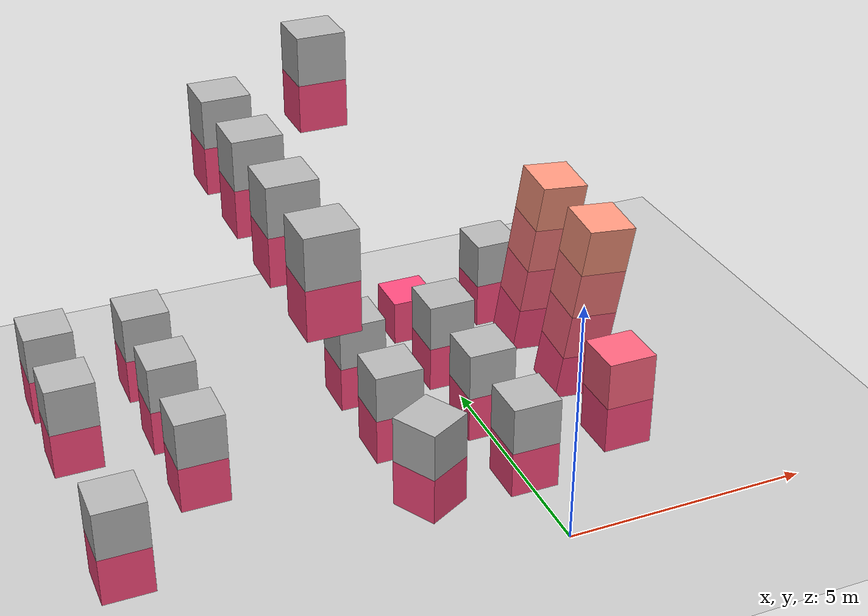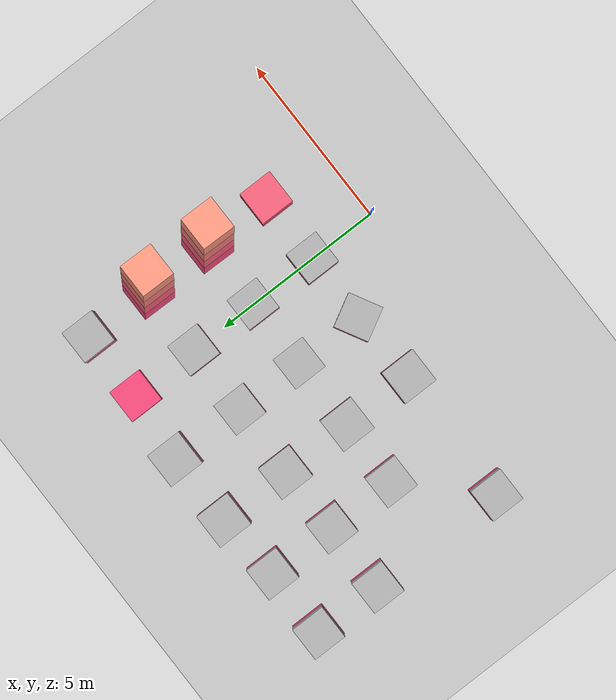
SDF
<sdf version="1.7">
 <world name="default">
  <include><uri>model://ground_plane</uri></include>
  <include><uri>model://sun</uri></include>
  <model name="model_test_clear_joint_forces">
   <pose>-8 2 0.5 0 0 0</pose>
   <static>false</static>
   <link name="link_1">
    <inertial>
     <inertia><ixx>0.166</ixx><ixy>0</ixy><ixz>0</ixz><iyy>0.166</iyy><iyz>0</iyz><izz>0.166</izz></inertia>
     <mass>1.0</mass>
    </inertial>
    <collision name="collision"><geometry><box><size>1 1 1</size></box></geometry></collision>
    <visual name="visual">
     <geometry><box><size>1 1 1</size></box></geometry>
     <material><diffuse>1.0 0.3 0.5 1.0</diffuse><specular>.1 .1 .1 1.0</specular></material>
    </visual>
   </link>
   <link name="link_2">
    <pose>0 0 1 0 0 0</pose>
    <inertial>
     <inertia><ixx>0.166</ixx><ixy>0</ixy><ixz>0</ixz><iyy>0.166</iyy><iyz>0</iyz><izz>0.166</izz></inertia>
     <mass>1.0</mass>
    </inertial>
    <collision name="collision"><geometry><box><size>1 1 1</size></box></geometry></collision>
    <visual name="visual"><geometry><box><size>1 1 1</size></box></geometry></visual>
   </link>
   <joint name="joint" type="revolute">
    <parent>link_1</parent>
    <child>link_2</child>
    <axis><xyz>0 0 1</xyz></axis>
   </joint>
  </model>
  <model name="model_test_delete_model">
   <pose>-8 6 0.5 0 0 0</pose>
   <static>false</static>
   <link name="link_1">
    <inertial>
     <inertia><ixx>0.166</ixx><ixy>0</ixy><ixz>0</ixz><iyy>0.166</iyy><iyz>0</iyz><izz>0.166</izz></inertia>
     <mass>1.0</mass>
    </inertial>
    <collision name="collision"><geometry><box><size>1 1 1</size></box></geometry></collision>
    <visual name="visual">
     <geometry><box><size>1 1 1</size></box></geometry>
     <material><diffuse>1.0 0.3 0.5 1.0</diffuse><specular>.1 .1 .1 1.0</specular></material>
    </visual>
   </link>
   <link name="link_2">
    <pose>0 0 1 0 0 0</pose>
    <inertial>
     <inertia><ixx>0.166</ixx><ixy>0</ixy><ixz>0</ixz><iyy>0.166</iyy><iyz>0</iyz><izz>0.166</izz></inertia>
     <mass>1.0</mass>
    </inertial>
    <collision name="collision"><geometry><box><size>1 1 1</size></box></geometry></collision>
    <visual name="visual"><geometry><box><size>1 1 1</size></box></geometry></visual>
   </link>
   <joint name="joint" type="revolute">
    <parent>link_1</parent>
    <child>link_2</child>
    <axis><xyz>0 0 1</xyz></axis>
   </joint>
  </model>
  <model name="model_test_get_joint_properties">
   <pose>-8 8 0.5 0 0 0</pose>
   <static>false</static>
   <link name="link_1">
    <inertial>
     <inertia><ixx>0.166</ixx><ixy>0</ixy><ixz>0</ixz><iyy>0.166</iyy><iyz>0</iyz><izz>0.166</izz></inertia>
     <mass>1.0</mass>
    </inertial>
    <collision name="collision"><geometry><box><size>1 1 1</size></box></geometry></collision>
    <visual name="visual">
     <geometry><box><size>1 1 1</size></box></geometry>
     <material><diffuse>1.0 0.3 0.5 1.0</diffuse><specular>.1 .1 .1 1.0</specular></material>
    </visual>
   </link>
   <link name="link_2">
    <pose>0 0 1 0 0 0</pose>
    <inertial>
     <inertia><ixx>0.166</ixx><ixy>0</ixy><ixz>0</ixz><iyy>0.166</iyy><iyz>0</iyz><izz>0.166</izz></inertia>
     <mass>1.0</mass>
    </inertial>
    <collision name="collision"><geometry><box><size>1 1 1</size></box></geometry></collision>
    <visual name="visual"><geometry><box><size>1 1 1</size></box></geometry></visual>
   </link>
   <joint name="joint" type="revolute">
    <parent>link_1</parent>
    <child>link_2</child>
    <axis><xyz>0 0 1</xyz></axis>
   </joint>
  </model>
  <model name="model_test_get_link_properties">
   <pose>-6 4 0.5 0 0 0</pose>
   <static>false</static>
   <link name="link_1">
    <inertial>
     <inertia><ixx>0.166</ixx><ixy>0</ixy><ixz>0</ixz><iyy>0.166</iyy><iyz>0</iyz><izz>0.166</izz></inertia>
     <mass>1.0</mass>
    </inertial>
    <collision name="collision"><geometry><box><size>1 1 1</size></box></geometry></collision>
    <visual name="visual">
     <geometry><box><size>1 1 1</size></box></geometry>
     <material><diffuse>1.0 0.3 0.5 1.0</diffuse><specular>.1 .1 .1 1.0</specular></material>
    </visual>
   </link>
   <link name="link_2">
    <pose>0 0 1 0 0 0</pose>
    <inertial>
     <inertia><ixx>0.11</ixx><ixy>0.03</ixy><ixz>0.8</ixz><iyy>0.241</iyy><iyz>0.001</iyz><izz>0.23</izz></inertia>
     <mass>1.0</mass>
    </inertial>
    <collision name="collision"><geometry><box><size>1 1 1</size></box></geometry></collision>
    <visual name="visual"><geometry><box><size>1 1 1</size></box></geometry></visual>
   </link>
   <joint name="joint" type="revolute">
    <parent>link_1</parent>
    <child>link_2</child>
    <axis><xyz>0 0 1</xyz></axis>
   </joint>
  </model>
  <model name="model_test_get_link_gravity_mode">
   <pose>-6 6 0.5 0 0 0</pose>
   <static>false</static>
   <link name="link_1">
    <inertial>
     <inertia><ixx>0.166</ixx><ixy>0</ixy><ixz>0</ixz><iyy>0.166</iyy><iyz>0</iyz><izz>0.166</izz></inertia>
     <mass>1.0</mass>
    </inertial>
    <collision name="collision"><geometry><box><size>1 1 1</size></box></geometry></collision>
    <visual name="visual">
     <geometry><box><size>1 1 1</size></box></geometry>
     <material><diffuse>1.0 0.3 0.5 1.0</diffuse><specular>.1 .1 .1 1.0</specular></material>
    </visual>
   </link>
   <link name="link_2">
    <pose>0 0 1 0 0 0</pose>
    <gravity>false</gravity>
    <inertial>
     <inertia><ixx>0.166</ixx><ixy>0</ixy><ixz>0</ixz><iyy>0.166</iyy><iyz>0</iyz><izz>0.166</izz></inertia>
     <mass>1.0</mass>
    </inertial>
    <collision name="collision"><geometry><box><size>1 1 1</size></box></geometry></collision>
    <visual name="visual"><geometry><box><size>1 1 1</size></box></geometry></visual>
   </link>
   <joint name="joint" type="revolute">
    <parent>link_1</parent>
    <child>link_2</child>
    <axis><xyz>0 0 1</xyz></axis>
   </joint>
  </model>
  <model name="model_test_get_link_mass">
   <pose>-6 8 0.5 0 0 0</pose>
   <static>false</static>
   <link name="link_1">
    <inertial>
     <inertia><ixx>0.166</ixx><ixy>0</ixy><ixz>0</ixz><iyy>0.166</iyy><iyz>0</iyz><izz>0.166</izz></inertia>
     <mass>1.0</mass>
    </inertial>
    <collision name="collision"><geometry><box><size>1 1 1</size></box></geometry></collision>
    <visual name="visual">
     <geometry><box><size>1 1 1</size></box></geometry>
     <material><diffuse>1.0 0.3 0.5 1.0</diffuse><specular>.1 .1 .1 1.0</specular></material>
    </visual>
   </link>
   <link name="link_2">
    <pose>0 0 1 0 0 0</pose>
    <inertial>
     <inertia><ixx>0.333</ixx><ixy>0</ixy><ixz>0</ixz><iyy>0.333</iyy><iyz>0</iyz><izz>0.333</izz></inertia>
     <mass>2.0</mass>
    </inertial>
    <collision name="collision"><geometry><box><size>1 1 1</size></box></geometry></collision>
    <visual name="visual"><geometry><box><size>1 1 1</size></box></geometry></visual>
   </link>
   <joint name="joint" type="revolute">
    <parent>link_1</parent>
    <child>link_2</child>
    <axis><xyz>0 0 1</xyz></axis>
   </joint>
  </model>
  <model name="model_test_get_link_angular_velocity">
   <pose>-4 2 5 0 0 0</pose>
   <static>false</static>
   <link name="link_1">
    <inertial>
     <inertia><ixx>0.166</ixx><ixy>0</ixy><ixz>0</ixz><iyy>0.166</iyy><iyz>0</iyz><izz>0.166</izz></inertia>
     <mass>1.0</mass>
    </inertial>
    <collision name="collision"><geometry><box><size>1 1 1</size></box></geometry></collision>
    <visual name="visual">
     <geometry><box><size>1 1 1</size></box></geometry>
     <material><diffuse>1.0 0.3 0.5 1.0</diffuse><specular>.1 .1 .1 1.0</specular></material>
    </visual>
   </link>
   <link name="link_2">
    <pose>0 0 1 0 0 0</pose>
    <inertial>
     <inertia><ixx>0.166</ixx><ixy>0</ixy><ixz>0</ixz><iyy>0.166</iyy><iyz>0</iyz><izz>0.166</izz></inertia>
     <mass>1.0</mass>
    </inertial>
    <collision name="collision"><geometry><box><size>1 1 1</size></box></geometry></collision>
    <visual name="visual"><geometry><box><size>1 1 1</size></box></geometry></visual>
   </link>
   <joint name="joint" type="revolute">
    <parent>link_1</parent>
    <child>link_2</child>
    <axis><xyz>0 0 1</xyz></axis>
   </joint>
  </model>
  <model name="model_test_get_model_properties">
   <pose>-4 4 5 0 0 0</pose>
   <static>false</static>
   <link name="link_1">
    <inertial>
     <inertia><ixx>0.166</ixx><ixy>0</ixy><ixz>0</ixz><iyy>0.166</iyy><iyz>0</iyz><izz>0.166</izz></inertia>
     <mass>1.0</mass>
    </inertial>
    <collision name="col_link_1"><geometry><box><size>1 1 1</size></box></geometry></collision>
    <visual name="visual">
     <geometry><box><size>1 1 1</size></box></geometry>
     <material><diffuse>1.0 0.3 0.5 1.0</diffuse><specular>.1 .1 .1 1.0</specular></material>
    </visual>
   </link>
   <link name="link_2">
    <pose>0 0 1 0 0 0</pose>
    <inertial>
     <inertia><ixx>0.166</ixx><ixy>0</ixy><ixz>0</ixz><iyy>0.166</iyy><iyz>0</iyz><izz>0.166</izz></inertia>
     <mass>1.0</mass>
    </inertial>
    <collision name="col_link_2"><geometry><box><size>1 1 1</size></box></geometry></collision>
    <visual name="visual"><geometry><box><size>1 1 1</size></box></geometry></visual>
   </link>
   <joint name="my_joint" type="revolute">
    <parent>link_1</parent>
    <child>link_2</child>
    <axis><xyz>0 0 1</xyz></axis>
   </joint>
  </model>
  <model name="model_test_get_parent_model_name_parent">
   <pose>-4 6 5 0 0 0</pose>
   <model name="model_test_get_parent_model_name">
    <static>false</static>
    <link name="link_1">
     <inertial>
      <inertia><ixx>0.166</ixx><ixy>0</ixy><ixz>0</ixz><iyy>0.166</iyy><iyz>0</iyz><izz>0.166</izz></inertia>
      <mass>1.0</mass>
     </inertial>
     <collision name="collision"><geometry><box><size>1 1 1</size></box></geometry></collision>
     <visual name="visual">
      <geometry><box><size>1 1 1</size></box></geometry>
      <material><diffuse>1.0 0.3 0.5 1.0</diffuse><specular>.1 .1 .1 1.0</specular></material>
     </visual>
    </link>
    <link name="link_2">
     <pose>0 0 1 0 0 0</pose>
     <inertial>
      <inertia><ixx>0.166</ixx><ixy>0</ixy><ixz>0</ixz><iyy>0.166</iyy><iyz>0</iyz><izz>0.166</izz></inertia>
      <mass>1.0</mass>
     </inertial>
     <collision name="collision"><geometry><box><size>1 1 1</size></box></geometry></collision>
     <visual name="visual"><geometry><box><size>1 1 1</size></box></geometry></visual>
    </link>
    <joint name="joint" type="revolute">
     <parent>link_1</parent>
     <child>link_2</child>
     <axis><xyz>0 0 1</xyz></axis>
    </joint>
   </model>
  </model>
  <model name="model_test_get_canonical_link_name">
   <pose>-4 8 5 0 0 0</pose>
   <static>false</static>
   <link name="link_1">
    <inertial>
     <inertia><ixx>0.166</ixx><ixy>0</ixy><ixz>0</ixz><iyy>0.166</iyy><iyz>0</iyz><izz>0.166</izz></inertia>
     <mass>1.0</mass>
    </inertial>
    <collision name="collision"><geometry><box><size>1 1 1</size></box></geometry></collision>
    <visual name="visual">
     <geometry><box><size>1 1 1</size></box></geometry>
     <material><diffuse>1.0 0.3 0.5 1.0</diffuse><specular>.1 .1 .1 1.0</specular></material>
    </visual>
   </link>
   <link name="link_2">
    <pose>0 0 1 0 0 0</pose>
    <inertial>
     <inertia><ixx>0.166</ixx><ixy>0</ixy><ixz>0</ixz><iyy>0.166</iyy><iyz>0</iyz><izz>0.166</izz></inertia>
     <mass>1.0</mass>
    </inertial>
    <collision name="collision"><geometry><box><size>1 1 1</size></box></geometry></collision>
    <visual name="visual"><geometry><box><size>1 1 1</size></box></geometry></visual>
   </link>
   <joint name="joint" type="revolute">
    <parent>link_1</parent>
    <child>link_2</child>
    <axis><xyz>0 0 1</xyz></axis>
   </joint>
  </model>
  <model name="model_test_get_model_state">
   <pose>-2 2 0.5 0 0 0.5</pose>
   <static>false</static>
   <link name="link_1">
    <inertial>
     <inertia><ixx>0.166</ixx><ixy>0</ixy><ixz>0</ixz><iyy>0.166</iyy><iyz>0</iyz><izz>0.166</izz></inertia>
     <mass>1.0</mass>
    </inertial>
    <collision name="collision"><geometry><box><size>1 1 1</size></box></geometry></collision>
    <visual name="visual">
     <geometry><box><size>1 1 1</size></box></geometry>
     <material><diffuse>1.0 0.3 0.5 1.0</diffuse><specular>.1 .1 .1 1.0</specular></material>
    </visual>
   </link>
   <link name="link_2">
    <pose>0 0 1 0 0 0</pose>
    <inertial>
     <inertia><ixx>0.166</ixx><ixy>0</ixy><ixz>0</ixz><iyy>0.166</iyy><iyz>0</iyz><izz>0.166</izz></inertia>
     <mass>1.0</mass>
    </inertial>
    <collision name="collision"><geometry><box><size>1 1 1</size></box></geometry></collision>
    <visual name="visual"><geometry><box><size>1 1 1</size></box></geometry></visual>
   </link>
   <joint name="joint" type="revolute">
    <parent>link_1</parent>
    <child>link_2</child>
    <axis><xyz>0 0 1</xyz></axis>
   </joint>
  </model>
  <model name="model_test_get_world_properties">
   <pose>-2 4 0.5 0 0 0</pose>
   <static>false</static>
   <link name="link_1">
    <inertial>
     <inertia><ixx>0.166</ixx><ixy>0</ixy><ixz>0</ixz><iyy>0.166</iyy><iyz>0</iyz><izz>0.166</izz></inertia>
     <mass>1.0</mass>
    </inertial>
    <collision name="collision"><geometry><box><size>1 1 1</size></box></geometry></collision>
    <visual name="visual">
     <geometry><box><size>1 1 1</size></box></geometry>
     <material><diffuse>1.0 0.3 0.5 1.0</diffuse><specular>.1 .1 .1 1.0</specular></material>
    </visual>
   </link>
   <link name="link_2">
    <pose>0 0 1 0 0 0</pose>
    <inertial>
     <inertia><ixx>0.166</ixx><ixy>0</ixy><ixz>0</ixz><iyy>0.166</iyy><iyz>0</iyz><izz>0.166</izz></inertia>
     <mass>1.0</mass>
    </inertial>
    <collision name="collision"><geometry><box><size>1 1 1</size></box></geometry></collision>
    <visual name="visual"><geometry><box><size>1 1 1</size></box></geometry></visual>
   </link>
   <joint name="joint" type="revolute">
    <parent>link_1</parent>
    <child>link_2</child>
    <axis><xyz>0 0 1</xyz></axis>
   </joint>
  </model>
  <model name="model_test_get_model_names">
   <pose>-2 6 0.5 0 0 0</pose>
   <static>false</static>
   <link name="link_1">
    <inertial>
     <inertia><ixx>0.166</ixx><ixy>0</ixy><ixz>0</ixz><iyy>0.166</iyy><iyz>0</iyz><izz>0.166</izz></inertia>
     <mass>1.0</mass>
    </inertial>
    <collision name="collision"><geometry><box><size>1 1 1</size></box></geometry></collision>
    <visual name="visual">
     <geometry><box><size>1 1 1</size></box></geometry>
     <material><diffuse>1.0 0.3 0.5 1.0</diffuse><specular>.1 .1 .1 1.0</specular></material>
    </visual>
   </link>
   <link name="link_2">
    <pose>0 0 1 0 0 0</pose>
    <inertial>
     <inertia><ixx>0.166</ixx><ixy>0</ixy><ixz>0</ixz><iyy>0.166</iyy><iyz>0</iyz><izz>0.166</izz></inertia>
     <mass>1.0</mass>
    </inertial>
    <collision name="collision"><geometry><box><size>1 1 1</size></box></geometry></collision>
    <visual name="visual"><geometry><box><size>1 1 1</size></box></geometry></visual>
   </link>
   <joint name="joint" type="revolute">
    <parent>link_1</parent>
    <child>link_2</child>
    <axis><xyz>0 0 1</xyz></axis>
   </joint>
  </model>
  <model name="model_test_reset_world">
   <pose>-2 8 6 0 0 0</pose>
   <static>false</static>
   <link name="link_1">
    <inertial>
     <inertia><ixx>0.166</ixx><ixy>0</ixy><ixz>0</ixz><iyy>0.166</iyy><iyz>0</iyz><izz>0.166</izz></inertia>
     <mass>1.0</mass>
    </inertial>
    <collision name="collision"><geometry><box><size>1 1 1</size></box></geometry></collision>
    <visual name="visual">
     <geometry><box><size>1 1 1</size></box></geometry>
     <material><diffuse>1.0 0.3 0.5 1.0</diffuse><specular>.1 .1 .1 1.0</specular></material>
    </visual>
   </link>
   <link name="link_2">
    <pose>0 0 1 0 0 0</pose>
    <inertial>
     <inertia><ixx>0.166</ixx><ixy>0</ixy><ixz>0</ixz><iyy>0.166</iyy><iyz>0</iyz><izz>0.166</izz></inertia>
     <mass>1.0</mass>
    </inertial>
    <collision name="collision"><geometry><box><size>1 1 1</size></box></geometry></collision>
    <visual name="visual"><geometry><box><size>1 1 1</size></box></geometry></visual>
   </link>
   <joint name="joint" type="revolute">
    <parent>link_1</parent>
    <child>link_2</child>
    <axis><xyz>0 0 1</xyz></axis>
   </joint>
  </model>
  <model name="model_test_set_link_gravity_mode">
   <pose>0 2 0.5 0 0 0</pose>
   <static>false</static>
   <link name="link_1">
    <inertial>
     <inertia><ixx>0.166</ixx><ixy>0</ixy><ixz>0</ixz><iyy>0.166</iyy><iyz>0</iyz><izz>0.166</izz></inertia>
     <mass>1.0</mass>
    </inertial>
    <collision name="collision"><geometry><box><size>1 1 1</size></box></geometry></collision>
    <visual name="visual">
     <geometry><box><size>1 1 1</size></box></geometry>
     <material><diffuse>1.0 0.3 0.5 1.0</diffuse><specular>.1 .1 .1 1.0</specular></material>
    </visual>
   </link>
   <link name="link_2">
    <pose>0 0 1 0 0 0</pose>
    <inertial>
     <inertia><ixx>0.166</ixx><ixy>0</ixy><ixz>0</ixz><iyy>0.166</iyy><iyz>0</iyz><izz>0.166</izz></inertia>
     <mass>1.0</mass>
    </inertial>
    <collision name="collision"><geometry><box><size>1 1 1</size></box></geometry></collision>
    <visual name="visual"><geometry><box><size>1 1 1</size></box></geometry></visual>
   </link>
   <joint name="joint" type="revolute">
    <parent>link_1</parent>
    <child>link_2</child>
    <axis><xyz>0 0 1</xyz></axis>
   </joint>
  </model>
  <model name="model_test_set_link_mass">
   <pose>0 4 0.5 0 0 0</pose>
   <static>false</static>
   <link name="link_1">
    <inertial>
     <inertia><ixx>0.166</ixx><ixy>0</ixy><ixz>0</ixz><iyy>0.166</iyy><iyz>0</iyz><izz>0.166</izz></inertia>
     <mass>1.0</mass>
    </inertial>
    <collision name="collision"><geometry><box><size>1 1 1</size></box></geometry></collision>
    <visual name="visual">
     <geometry><box><size>1 1 1</size></box></geometry>
     <material><diffuse>1.0 0.3 0.5 1.0</diffuse><specular>.1 .1 .1 1.0</specular></material>
    </visual>
   </link>
   <link name="link_2">
    <pose>0 0 1 0 0 0</pose>
    <inertial>
     <inertia><ixx>0.166</ixx><ixy>0</ixy><ixz>0</ixz><iyy>0.166</iyy><iyz>0</iyz><izz>0.166</izz></inertia>
     <mass>1.0</mass>
    </inertial>
    <collision name="collision"><geometry><box><size>1 1 1</size></box></geometry></collision>
    <visual name="visual"><geometry><box><size>1 1 1</size></box></geometry></visual>
   </link>
   <joint name="joint" type="revolute">
    <parent>link_1</parent>
    <child>link_2</child>
    <axis><xyz>0 0 1</xyz></axis>
   </joint>
  </model>
  <model name="model_test_set_link_moments">
   <pose>0 6 0.5 0 0 0</pose>
   <static>false</static>
   <link name="link_1">
    <inertial>
     <inertia><ixx>0.166</ixx><ixy>0</ixy><ixz>0</ixz><iyy>0.166</iyy><iyz>0</iyz><izz>0.166</izz></inertia>
     <mass>1.0</mass>
    </inertial>
    <collision name="collision"><geometry><box><size>1 1 1</size></box></geometry></collision>
    <visual name="visual">
     <geometry><box><size>1 1 1</size></box></geometry>
     <material><diffuse>1.0 0.3 0.5 1.0</diffuse><specular>.1 .1 .1 1.0</specular></material>
    </visual>
   </link>
   <link name="link_2">
    <pose>0 0 1 0 0 0</pose>
    <inertial>
     <inertia><ixx>0.166</ixx><ixy>0</ixy><ixz>0</ixz><iyy>0.166</iyy><iyz>0</iyz><izz>0.166</izz></inertia>
     <mass>1.0</mass>
    </inertial>
    <collision name="collision"><geometry><box><size>1 1 1</size></box></geometry></collision>
    <visual name="visual"><geometry><box><size>1 1 1</size></box></geometry></visual>
   </link>
   <joint name="joint" type="revolute">
    <parent>link_1</parent>
    <child>link_2</child>
    <axis><xyz>0 0 1</xyz></axis>
   </joint>
  </model>
  <model name="model_test_set_link_state">
   <pose>0 8 0.5 0 0 0</pose>
   <static>false</static>
   <link name="link_1">
    <gravity>false</gravity>
    <inertial>
     <inertia><ixx>0.166</ixx><ixy>0</ixy><ixz>0</ixz><iyy>0.166</iyy><iyz>0</iyz><izz>0.166</izz></inertia>
     <mass>1.0</mass>
    </inertial>
    <collision name="collision"><geometry><box><size>1 1 1</size></box></geometry></collision>
    <visual name="visual">
     <geometry><box><size>1 1 1</size></box></geometry>
     <material><diffuse>1.0 0.3 0.5 1.0</diffuse><specular>.1 .1 .1 1.0</specular></material>
    </visual>
   </link>
  </model>
  <model name="model_test_set_model_state">
   <pose>2 2 1 0 0 0</pose>
   <static>false</static>
   <link name="link_1">
    <inertial>
     <inertia><ixx>0.166</ixx><ixy>0</ixy><ixz>0</ixz><iyy>0.166</iyy><iyz>0</iyz><izz>0.166</izz></inertia>
     <mass>1.0</mass>
    </inertial>
    <collision name="collision"><geometry><box><size>1 1 1</size></box></geometry></collision>
    <visual name="visual">
     <geometry><box><size>1 1 1</size></box></geometry>
     <material><diffuse>1.0 0.3 0.5 1.0</diffuse><specular>.1 .1 .1 1.0</specular></material>
    </visual>
   </link>
   <link name="link_2">
    <pose>0 0 1 0 0 0</pose>
    <inertial>
     <inertia><ixx>0.166</ixx><ixy>0</ixy><ixz>0</ixz><iyy>0.166</iyy><iyz>0</iyz><izz>0.166</izz></inertia>
     <mass>1.0</mass>
    </inertial>
    <collision name="collision"><geometry><box><size>1 1 1</size></box></geometry></collision>
    <visual name="visual">
     <geometry><box><size>1 1 1</size></box></geometry>
     <material><diffuse>1.0 0.4 0.5 1.0</diffuse><specular>.1 .1 .1 1.0</specular></material>
    </visual>
   </link>
   <joint name="joint" type="revolute">
    <parent>link_1</parent>
    <child>link_2</child>
    <pose>0 0 0.5 0 0 0</pose>
    <axis><xyz>0 0 1</xyz></axis>
   </joint>
  </model>
  <model name="model_test_get_joint_positions">
   <pose>2 4 1 0.1 0.1 0</pose>
   <static>false</static>
   <link name="link_1">
    <inertial>
     <inertia><ixx>0.166</ixx><ixy>0</ixy><ixz>0</ixz><iyy>0.166</iyy><iyz>0</iyz><izz>0.166</izz></inertia>
     <mass>1.0</mass>
    </inertial>
    <collision name="collision"><geometry><box><size>1 1 1</size></box></geometry></collision>
    <visual name="visual">
     <geometry><box><size>1 1 1</size></box></geometry>
     <material><diffuse>1.0 0.3 0.5 1.0</diffuse><specular>.1 .1 .1 1.0</specular></material>
    </visual>
   </link>
   <link name="link_2">
    <pose>0 0 1 0 0 0</pose>
    <inertial>
     <inertia><ixx>0.166</ixx><ixy>0</ixy><ixz>0</ixz><iyy>0.166</iyy><iyz>0</iyz><izz>0.166</izz></inertia>
     <mass>1.0</mass>
    </inertial>
    <collision name="collision"><geometry><box><size>1 1 1</size></box></geometry></collision>
    <visual name="visual">
     <geometry><box><size>1 1 1</size></box></geometry>
     <material><diffuse>1.0 0.4 0.5 1.0</diffuse><specular>.1 .1 .1 1.0</specular></material>
    </visual>
   </link>
   <link name="link_3">
    <pose>0 0 2 0 0 0</pose>
    <inertial>
     <inertia><ixx>0.166</ixx><ixy>0</ixy><ixz>0</ixz><iyy>0.166</iyy><iyz>0</iyz><izz>0.166</izz></inertia>
     <mass>1.0</mass>
    </inertial>
    <collision name="collision"><geometry><box><size>1 1 1</size></box></geometry></collision>
    <visual name="visual">
     <geometry><box><size>1 1 1</size></box></geometry>
     <material><diffuse>1.0 0.5 0.5 1.0</diffuse><specular>.1 .1 .1 1.0</specular></material>
    </visual>
   </link>
   <link name="link_4">
    <pose>0 0 3 0 0 0</pose>
    <inertial>
     <inertia><ixx>0.166</ixx><ixy>0</ixy><ixz>0</ixz><iyy>0.166</iyy><iyz>0</iyz><izz>0.166</izz></inertia>
     <mass>1.0</mass>
    </inertial>
    <collision name="collision"><geometry><box><size>1 1 1</size></box></geometry></collision>
    <visual name="visual">
     <geometry><box><size>1 1 1</size></box></geometry>
     <material><diffuse>1.0 0.6 0.5 1.0</diffuse><specular>.1 .1 .1 1.0</specular></material>
    </visual>
   </link>
   <joint name="joint_1" type="revolute">
    <parent>link_1</parent>
    <child>link_2</child>
    <pose>0 0 0.5 0 0 0</pose>
    <axis><xyz>0 0 1</xyz></axis>
   </joint>
   <joint name="joint_2" type="revolute">
    <parent>link_2</parent>
    <child>link_3</child>
    <pose>0 0 1.5 0 0 0</pose>
    <axis><xyz>0 0 1</xyz></axis>
   </joint>
   <joint name="joint_3" type="prismatic">
    <parent>link_3</parent>
    <child>link_4</child>
    <pose>0 0 2.5 0 0 0</pose>
    <axis><xyz>0 0 1</xyz><limit><lower>0</lower><upper>10</upper></limit></axis>
   </joint>
  </model>
  <model name="model_test_get_joint_rates">
   <pose>2 6 1 0.1 0.1 0</pose>
   <static>false</static>
   <link name="link_1">
    <inertial>
     <inertia><ixx>0.166</ixx><ixy>0</ixy><ixz>0</ixz><iyy>0.166</iyy><iyz>0</iyz><izz>0.166</izz></inertia>
     <mass>1.0</mass>
    </inertial>
    <collision name="collision"><geometry><box><size>1 1 1</size></box></geometry></collision>
    <visual name="visual">
     <geometry><box><size>1 1 1</size></box></geometry>
     <material><diffuse>1.0 0.3 0.5 1.0</diffuse><specular>.1 .1 .1 1.0</specular></material>
    </visual>
   </link>
   <link name="link_2">
    <pose>0 0 1 0 0 0</pose>
    <inertial>
     <inertia><ixx>0.166</ixx><ixy>0</ixy><ixz>0</ixz><iyy>0.166</iyy><iyz>0</iyz><izz>0.166</izz></inertia>
     <mass>1.0</mass>
    </inertial>
    <collision name="collision"><geometry><box><size>1 1 1</size></box></geometry></collision>
    <visual name="visual">
     <geometry><box><size>1 1 1</size></box></geometry>
     <material><diffuse>1.0 0.4 0.5 1.0</diffuse><specular>.1 .1 .1 1.0</specular></material>
    </visual>
   </link>
   <link name="link_3">
    <pose>0 0 2 0 0 0</pose>
    <inertial>
     <inertia><ixx>0.166</ixx><ixy>0</ixy><ixz>0</ixz><iyy>0.166</iyy><iyz>0</iyz><izz>0.166</izz></inertia>
     <mass>1.0</mass>
    </inertial>
    <collision name="collision"><geometry><box><size>1 1 1</size></box></geometry></collision>
    <visual name="visual">
     <geometry><box><size>1 1 1</size></box></geometry>
     <material><diffuse>1.0 0.5 0.5 1.0</diffuse><specular>.1 .1 .1 1.0</specular></material>
    </visual>
   </link>
   <link name="link_4">
    <pose>0 0 3 0 0 0</pose>
    <inertial>
     <inertia><ixx>0.166</ixx><ixy>0</ixy><ixz>0</ixz><iyy>0.166</iyy><iyz>0</iyz><izz>0.166</izz></inertia>
     <mass>1.0</mass>
    </inertial>
    <collision name="collision"><geometry><box><size>1 1 1</size></box></geometry></collision>
    <visual name="visual">
     <geometry><box><size>1 1 1</size></box></geometry>
     <material><diffuse>1.0 0.6 0.5 1.0</diffuse><specular>.1 .1 .1 1.0</specular></material>
    </visual>
   </link>
   <joint name="joint_1" type="revolute">
    <parent>link_1</parent>
    <child>link_2</child>
    <pose>0 0 0.5 0 0 0</pose>
    <axis><xyz>0 0 1</xyz></axis>
   </joint>
   <joint name="joint_2" type="revolute">
    <parent>link_2</parent>
    <child>link_3</child>
    <pose>0 0 1.5 0 0 0</pose>
    <axis><xyz>0 0 1</xyz></axis>
   </joint>
   <joint name="joint_3" type="prismatic">
    <parent>link_3</parent>
    <child>link_4</child>
    <pose>0 0 2.5 0 0 0</pose>
    <axis><xyz>0 0 1</xyz><limit><lower>0</lower><upper>10</upper></limit></axis>
   </joint>
  </model>
  <model name="model_test_set_joint_position">
   <pose>2 8 0.5 0 0 0</pose>
   <static>false</static>
   <link name="link_1">
    <inertial>
     <inertia><ixx>0.166</ixx><ixy>0</ixy><ixz>0</ixz><iyy>0.166</iyy><iyz>0</iyz><izz>0.166</izz></inertia>
     <mass>1.0</mass>
    </inertial>
    <collision name="collision"><geometry><box><size>1 1 1</size></box></geometry></collision>
    <visual name="visual">
     <geometry><box><size>1 1 1</size></box></geometry>
     <material><diffuse>1.0 0.3 0.5 1.0</diffuse><specular>.1 .1 .1 1.0</specular></material>
    </visual>
   </link>
   <link name="link_2">
    <pose>0 0 1 0 0 0</pose>
    <inertial>
     <inertia><ixx>0.166</ixx><ixy>0</ixy><ixz>0</ixz><iyy>0.166</iyy><iyz>0</iyz><izz>0.166</izz></inertia>
     <mass>1.0</mass>
    </inertial>
    <collision name="collision"><geometry><box><size>1 1 1</size></box></geometry></collision>
    <visual name="visual"><geometry><box><size>1 1 1</size></box></geometry></visual>
   </link>
   <joint name="joint" type="revolute">
    <parent>link_1</parent>
    <child>link_2</child>
    <axis><xyz>0 0 1</xyz></axis>
   </joint>
  </model>
 </world>
</sdf>
